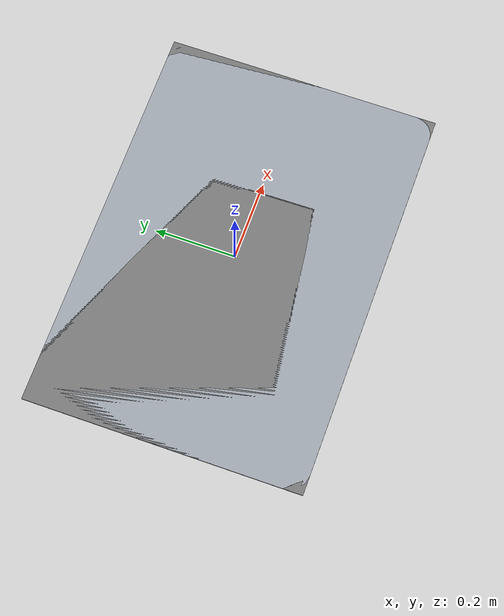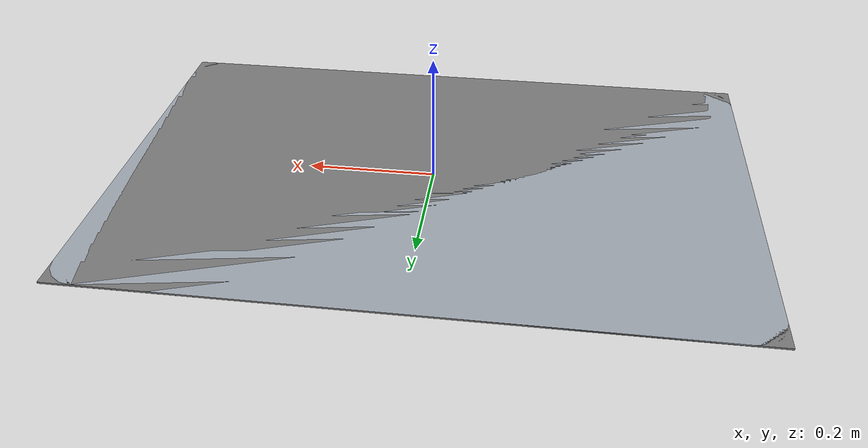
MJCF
<mujoco model="asset">
  <asset>
    <mesh name="mujoco_card_visual" file="mujoco_card.normalized.obj"/>
    <mesh name="mujoco_card_collision" file="mujoco_card.collision_box.obj"/>
  </asset>
  <worldbody><body name="mujoco_card">
    <geom type="mesh" mesh="mujoco_card_visual" contype="0" conaffinity="0" rgba="0.65 0.68 0.72 1"/>
    <geom type="mesh" mesh="mujoco_card_collision" density="1000"/>
  </body></worldbody>
</mujoco>
